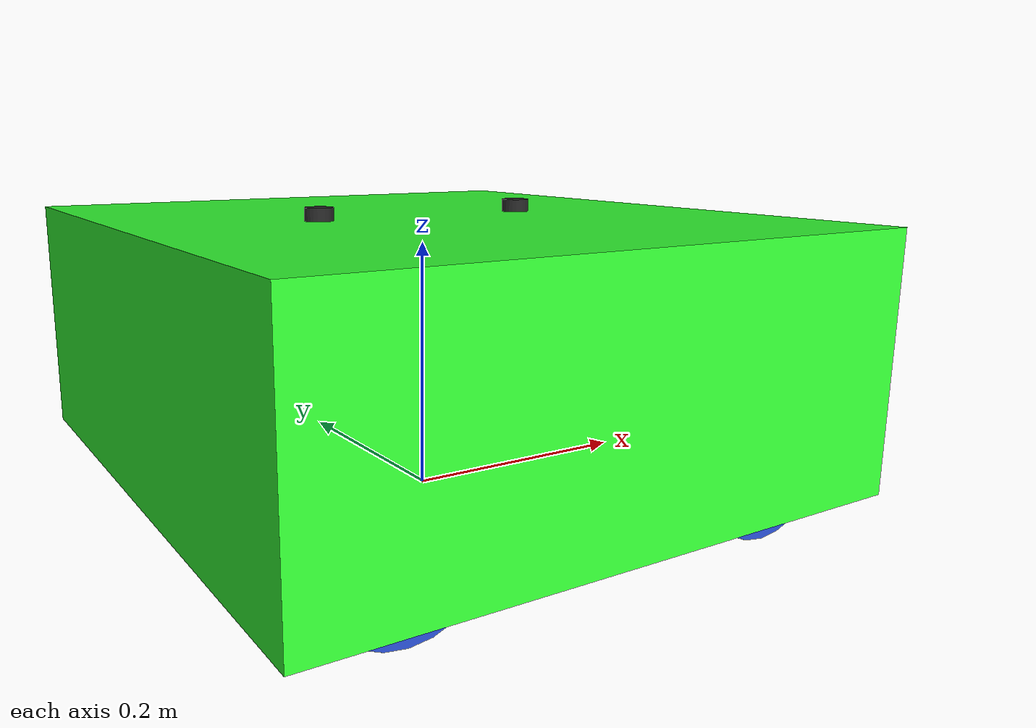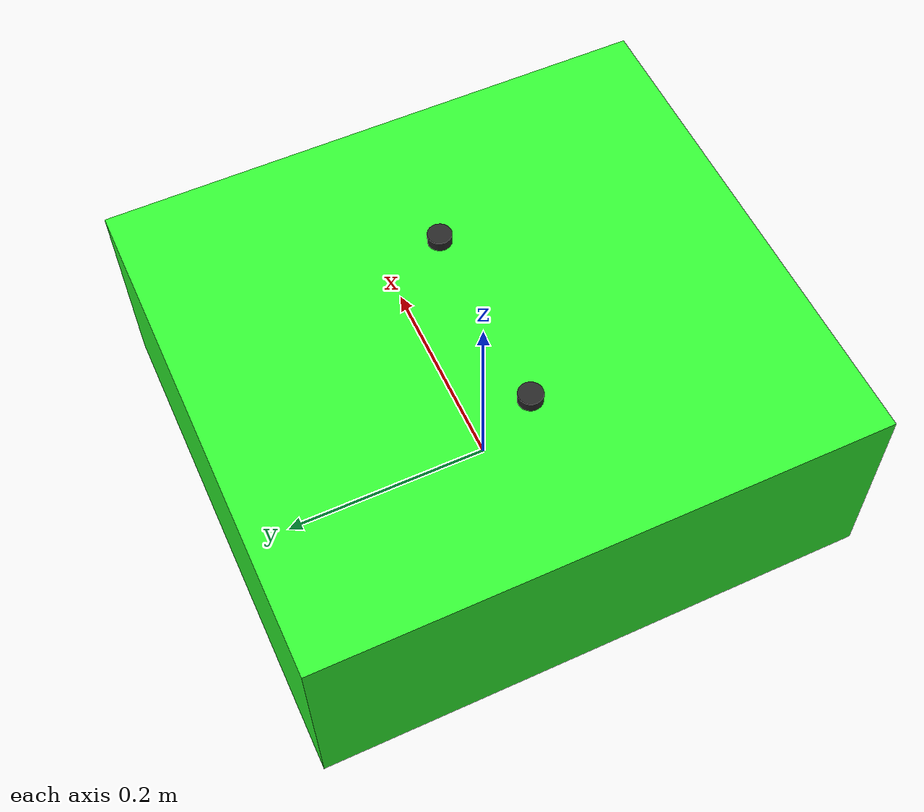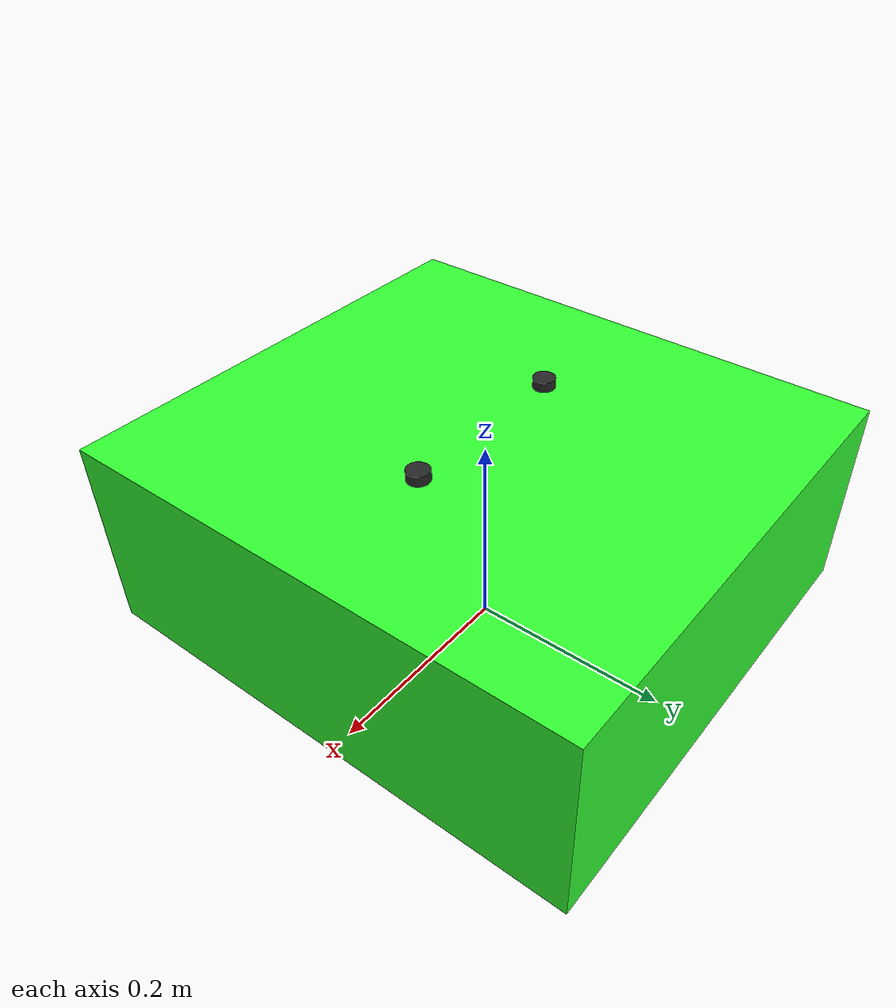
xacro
<?xml version="1.0"?>
<robot xmlns:xacro="http://www.ros.org/wiki/xacro" >

    <xacro:include filename="inertial_macros.xacro"/>

	  <link name="base_link">
	    <inertial>
	      <origin xyz="0 0 0" rpy="0 0 0"/>
	      <mass value="25.0"/>
	      <inertia ixx="0.2" ixy="0.0" ixz="0.0"
		       iyy="0.2" iyz="0.0"
		       izz="0.2"/>
	    </inertial>

          <visual>
	      <origin xyz="0 0 0.1235" rpy="0 0 0"/>
	      <geometry>
	        <box size="0.472 0.515 0.196"/>
	      </geometry>
	      <material name="green">
	         <color rgba="0.2 1 0.2 1"/>
	      </material>
	  </visual>

          <!-- Retractable trolley support pins shown retracted during approach.
               Keep these visual-only until the physical actuator/joint is added. -->
          <visual>
	      <origin xyz="0.090175 0 0.2265" rpy="0 0 0"/>
	      <geometry>
	        <cylinder radius="0.011" length="0.010"/>
	      </geometry>
	      <material name="dark_grey">
	         <color rgba="0.15 0.15 0.15 1"/>
	      </material>
	  </visual>

          <visual>
	      <origin xyz="-0.090175 0 0.2265" rpy="0 0 0"/>
	      <geometry>
	        <cylinder radius="0.011" length="0.010"/>
	      </geometry>
	      <material name="dark_grey">
	         <color rgba="0.15 0.15 0.15 1"/>
	      </material>
	  </visual>

	    <!-- Simple collision box using your real robot size -->
	    <collision>
	      <origin xyz="0 0 0.1235" rpy="0 0 0"/>
	      <geometry>
		<box size="0.472 0.515 0.196"/>
	      </geometry>
	    </collision>
	  </link>

	  <!-- =========================
	       Wheels
	       ========================= -->

	  <!-- Front Left wheel -->
	  <link name="wheel_fl">
	    <visual>
	      <origin xyz="0 0 0" rpy="-1.5708 0 0"/>
	      <geometry>
                 <cylinder radius="0.0635" length="0.051"/>
              </geometry>
	      <material name="blue" />
	    </visual>
	    <collision>
	      <origin xyz="0 0 0" rpy="1.5708 0 0"/>
	      <geometry>
		<!-- wheel radius/width are placeholders -->
		<cylinder radius="0.0635" length="0.051"/>
	      </geometry>
	    </collision>
	    <inertial>
	      <origin xyz="0 0 0" rpy="0 0 0"/>
	      <mass value="0.8"/>
	      <inertia ixx="0.01" ixy="0.0" ixz="0.0"
		       iyy="0.01" iyz="0.0"
		       izz="0.01"/>
	    </inertial>
	  </link>

	  <!-- Front Right wheel -->
	  <link name="wheel_fr">
	    <visual>
	      <origin xyz="0 0 0" rpy="1.5708 0 0"/>
	      <geometry>
                 <cylinder radius="0.0635" length="0.051"/>
              </geometry>
	      <material name="blue" />
	    </visual>
	    <collision>
	      <origin xyz="0 0 0" rpy="1.5708 0 0"/>
	      <geometry>
		<cylinder radius="0.0635" length="0.051"/>
	      </geometry>
	    </collision>
	    <inertial>
	      <origin xyz="0 0 0" rpy="0 0 0"/>
	      <mass value="0.8"/>
	      <inertia ixx="0.01" ixy="0.0" ixz="0.0"
		       iyy="0.01" iyz="0.0"
		       izz="0.01"/>
	    </inertial>
	  </link>

	  <!-- Rear Left wheel -->
	  <link name="wheel_rl">
	    <visual>
	      <origin xyz="0 0 0" rpy="-1.5708 0 0"/>
	      <geometry>
                 <cylinder radius="0.0635" length="0.051"/>
              </geometry>
	      <material name="blue" />
	    </visual>
	    <collision>
	      <origin xyz="0 0 0" rpy="1.5708 0 0"/>
	      <geometry>
		<cylinder radius="0.0635" length="0.051"/>
	      </geometry>
	    </collision>
	    <inertial>
	      <origin xyz="0 0 0" rpy="0 0 0"/>
	      <mass value="0.8"/>
	      <inertia ixx="0.01" ixy="0.0" ixz="0.0"
		       iyy="0.01" iyz="0.0"
		       izz="0.01"/>
	    </inertial>
	  </link>

	  <!-- Rear Right wheel -->
	  <link name="wheel_rr">
	    <visual>
	      <origin xyz="0 0 0" rpy="1.5708 0 0"/>
	      <geometry>
                 <cylinder radius="0.0635" length="0.051"/>
              </geometry>
	      <material name="blue" />
	    </visual>
	    <collision>
	      <origin xyz="0 0 0" rpy="1.5708 0 0"/>
	      <geometry>
		<cylinder radius="0.0635" length="0.051"/>
	      </geometry>
	    </collision>
	    <inertial>
	      <origin xyz="0 0 0" rpy="0 0 0"/>
	      <mass value="0.8"/>
	      <inertia ixx="0.01" ixy="0.0" ixz="0.0"
		       iyy="0.01" iyz="0.0"
		       izz="0.01"/>
	    </inertial>
	  </link>

	  <!-- Front Left -->
	  <joint name="wheel_fl_joint" type="continuous">
	    <parent link="base_link"/>
	    <child link="wheel_fl"/>
	    <origin xyz="0.1475 0.2019 0.0635" rpy="0 0 0"/>
	    <axis xyz="0 1 0"/>
	  </joint>

	  <!-- Front Right -->
	  <joint name="wheel_fr_joint" type="continuous">
	    <parent link="base_link"/>
	    <child link="wheel_fr"/>
	    <origin xyz="-0.1475 0.2019 0.0635" rpy="0 0 0"/>
	    <axis xyz="0 1 0"/>
	  </joint>

	  <!-- Rear Left -->
	  <joint name="wheel_rl_joint" type="continuous">
	    <parent link="base_link"/>
	    <child link="wheel_rl"/>
	    <origin xyz="0.1475 -0.2019 0.0635" rpy="0 0 0"/>
	    <axis xyz="0 1 0"/>
	  </joint>

	  <!-- Rear Right -->
	  <joint name="wheel_rr_joint" type="continuous">
	    <parent link="base_link"/>
	    <child link="wheel_rr"/>
	    <origin xyz="-0.1475 -0.2019 0.0635" rpy="0 0 0"/>
	    <axis xyz="0 1 0"/>
	  </joint>

  </robot>
